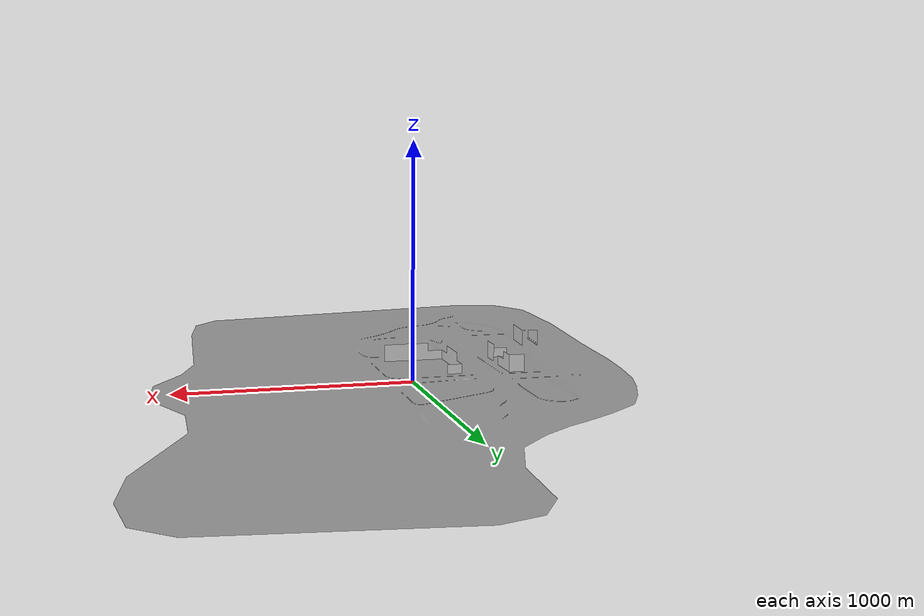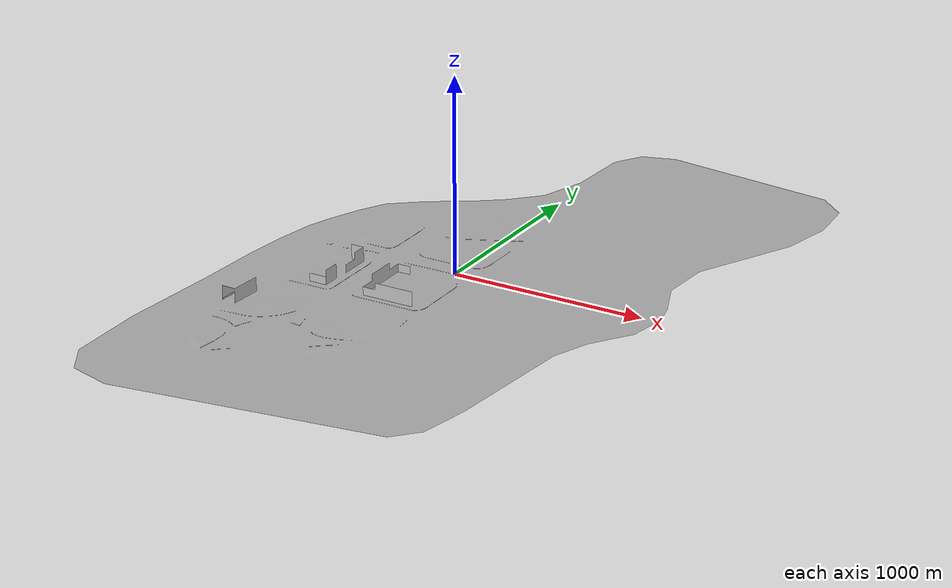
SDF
<?xml version="1.0" ?>
<sdf version="1.5">
  <model name="MyCity">
    <static>true</static>
    <pose frame=''>0 0 0 0 0 0</pose>
    <link name="link">
      <pose frame=''>0 0 0 0 0 0</pose>
      <collision name="collision">
        <geometry>
          <mesh>
            <scale>1 1 1</scale>
            <uri>model://MyCity/meshes/MyCity.dae</uri>
          </mesh>
        </geometry>
      </collision>
      <visual name="visual">
        <geometry>
          <mesh>
            <scale>1 1 1</scale>
            <uri>model://MyCity/meshes/MyCity.dae</uri>
          </mesh>
        </geometry>
      </visual>
    </link>
  </model>
</sdf>
